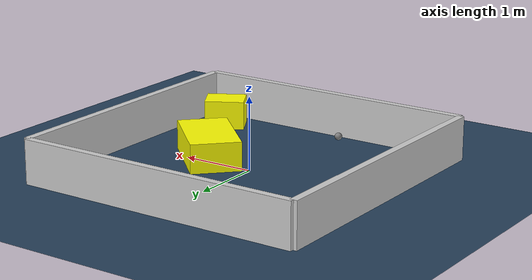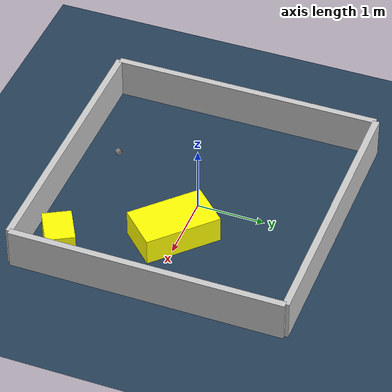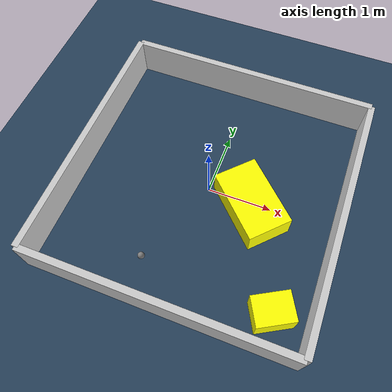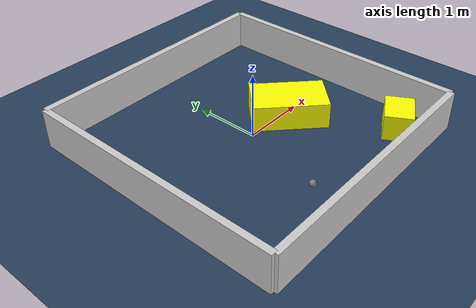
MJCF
<?xml version="1.0" ?>
<mujoco model="generated_environment">
  <option timestep="0.01" integrator="RK4" cone="elliptic"/>
  <default>
    <geom density="1"/>
  </default>
  <asset>
    <texture builtin="gradient" height="3072" rgb1="0.3 0.5 0.7" rgb2="0 0 0" type="skybox" width="512"/>
    <texture builtin="checker" height="300" mark="edge" markrgb="0.8 0.8 0.8" name="groundplane" rgb1="0.2 0.3 0.4" rgb2="0.1 0.2 0.3" type="2d" width="300"/>
    <material name="groundplane" reflectance="0.2" texrepeat="5 5" texture="groundplane" texuniform="true"/>
    <material name="robot" rgba="0.0 1.0 0.0 1"/>
  </asset>
  <worldbody>
    <light dir="0 0 -1" directional="true" pos="0 0 1.5"/>
    <geom condim="4" friction="1.0 0.005 0.001" material="groundplane" name="floor" size="0 0 0.05" type="plane"/>
    <body name="walls">
      <geom name="wall_1" condim="4" pos="-2.0 0.0 0.3" rgba="0.800000011920929 0.800000011920929 0.800000011920929 1.0" size="0.05 2.0 0.3" type="box"/>
      <geom name="wall_2" condim="4" pos="2.0 0.0 0.3" rgba="0.800000011920929 0.800000011920929 0.800000011920929 1.0" size="0.05 2.0 0.3" type="box"/>
      <geom name="wall_3" condim="4" pos="0.0 -2.0 0.3" rgba="0.800000011920929 0.800000011920929 0.800000011920929 1.0" size="2.0 0.05 0.3" type="box"/>
      <geom name="wall_4" condim="4" pos="0.0 2.0 0.3" rgba="0.800000011920929 0.800000011920929 0.800000011920929 1.0" size="2.0 0.05 0.3" type="box"/>
    </body>
    <body name="robot">
      <joint name="joint_x" type="slide" pos="0 0 0" axis="1 0 0"/>
      <joint name="joint_y" type="slide" pos="0 0 0" axis="0 1 0"/>
      <geom name="robot" type="sphere" pos="-0.48225636340115163 -1.4075460556001222 0.2" size="0.05" mass="5." friction="1.0 0.005 0.0001" condim="4"/>
      <site name="sensor_ball"/>
    </body>
    <body name="obstacle_1_movable">
      <geom name="obstacle_1_movable" condim="4" pos="0.7118686527818223 -0.08751231369869128 0.2" euler="0 0 315.89734859137315" friction="1.0 0.005 0.001" rgba="1 1 0 1" size="0.5642835763529171 0.33894115739427516 0.2" type="box" mass="0.1"/>
      <joint type="free"/>
    </body>
    <body name="obstacle_2_movable">
      <geom name="obstacle_2_movable" condim="4" pos="1.4634744927400956 -1.506369471535175 0.2" euler="0 0 209.07526014039018" friction="1.0 0.005 0.001" rgba="1 1 0 1" size="0.27629376450271 0.2111760061548417 0.2" type="box" mass="0.1"/>
      <joint type="free"/>
    </body>
  </worldbody>
  <actuator>
    <motor name="actuator_x" joint="joint_x" gear="1" ctrlrange="-1 1"/>
    <motor name="actuator_y" joint="joint_y" gear="1" ctrlrange="-1 1"/>
  </actuator>
</mujoco>
